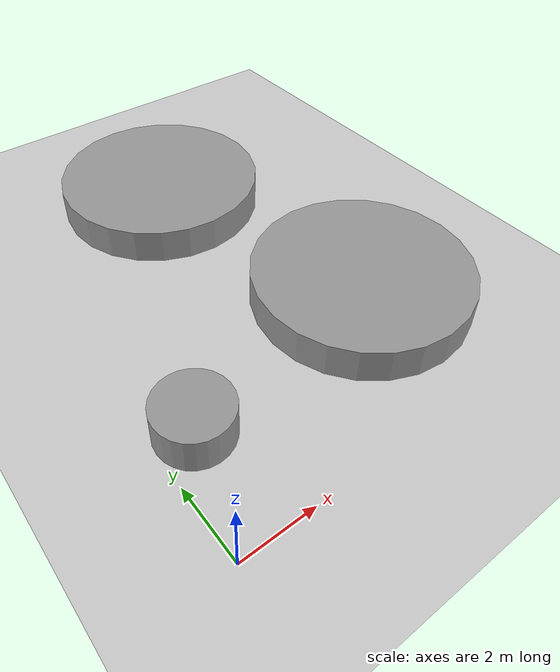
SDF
<sdf version="1.7">
 <world name="default">
  <model name="ground_plane">
   <static>1</static>
   <link name="link">
    <collision name="collision">
     <geometry><plane><normal>0 0 1</normal><size>100 100</size></plane></geometry>
     <surface>
      <contact><collide_bitmask>65535</collide_bitmask></contact>
      <friction><ode><mu>100</mu><mu2>50</mu2></ode></friction>
     </surface>
    </collision>
    <visual name="visual">
     <cast_shadows>0</cast_shadows>
     <geometry><plane><normal>0 0 1</normal><size>100 100</size></plane></geometry>
     <material>
      <script><uri>file://media/materials/scripts/gazebo.material</uri><name>Gazebo/Grey</name></script>
     </material>
    </visual>
   </link>
  </model>
  <model name="unit_cylinder">
   <link name="link">
    <inertial>
     <mass>1000</mass>
     <inertia><ixx>2333.33</ixx><ixy>0</ixy><ixz>0</ixz><iyy>2333.33</iyy><iyz>0</iyz><izz>4500</izz></inertia>
    </inertial>
    <pose>5 11 0.5 0 -0 0</pose>
    <visual name="visual">
     <geometry><cylinder><radius>3</radius><length>1</length></cylinder></geometry>
     <material>
      <script><name>Gazebo/Grey</name><uri>file://media/materials/scripts/gazebo.material</uri></script>
      <shader type="pixel"><normal_map>__default__</normal_map></shader>
      <ambient>0.467 0.463 0.482 1</ambient>
      <diffuse>0.467 0.463 0.482 1</diffuse>
      <specular>0.467 0.463 0.482 1</specular>
      <emissive>0.467 0.463 0.482 1</emissive>
     </material>
    </visual>
    <collision name="collision">
     <geometry><cylinder><radius>3</radius><length>1</length></cylinder></geometry>
     <surface>
      <friction>
       <ode><mu>1</mu><mu2>1</mu2><fdir1>0 0 0</fdir1><slip1>0</slip1><slip2>0</slip2></ode>
       <torsional>
        <coefficient>1</coefficient>
        <patch_radius>0</patch_radius>
        <surface_radius>0</surface_radius>
        <use_patch_radius>1</use_patch_radius>
        <ode><slip>0</slip></ode>
       </torsional>
      </friction>
      <bounce><restitution_coefficient>0</restitution_coefficient><threshold>1e+06</threshold></bounce>
      <contact>
       <collide_without_contact>0</collide_without_contact>
       <collide_without_contact_bitmask>1</collide_without_contact_bitmask>
       <collide_bitmask>1</collide_bitmask>
       <ode>
        <soft_cfm>0</soft_cfm>
        <soft_erp>0.2</soft_erp>
        <kp>1e+13</kp>
        <kd>1</kd>
        <max_vel>0.01</max_vel>
        <min_depth>0</min_depth>
       </ode>
       <bullet>
        <split_impulse>1</split_impulse>
        <split_impulse_penetration_threshold>-0.01</split_impulse_penetration_threshold>
        <soft_cfm>0</soft_cfm>
        <soft_erp>0.2</soft_erp>
        <kp>1e+13</kp>
        <kd>1</kd>
       </bullet>
      </contact>
     </surface>
    </collision>
    <sensor name="contact_1" type="contact">
     <contact><collision>collision</collision><topic>__default_topic__</topic></contact>
     <plugin name="collision_1" filename="libgazebo_ros_bumper.so">
      <ros><namespace>collision_1</namespace><remapping>bumper_states:=collision</remapping></ros>
     </plugin>
    </sensor>
   </link>
   <static>1</static>
   <pose>0 0 0.001202 0 -0 0</pose>
  </model>
  <model name="unit_cylinder_0">
   <link name="link">
    <inertial>
     <mass>1000</mass>
     <inertia><ixx>2333.33</ixx><ixy>0</ixy><ixz>0</ixz><iyy>2333.33</iyy><iyz>0</iyz><izz>4500</izz></inertia>
    </inertial>
    <pose>7 4 0.5 0 -0 0</pose>
    <visual name="visual">
     <geometry><cylinder><radius>3</radius><length>1</length></cylinder></geometry>
     <material>
      <script><name>Gazebo/Grey</name><uri>file://media/materials/scripts/gazebo.material</uri></script>
      <shader type="pixel"><normal_map>__default__</normal_map></shader>
      <ambient>0.467 0.463 0.482 1</ambient>
      <diffuse>0.467 0.463 0.482 1</diffuse>
      <specular>0.467 0.463 0.482 1</specular>
      <emissive>0.467 0.463 0.482 1</emissive>
     </material>
    </visual>
    <collision name="collision">
     <geometry><cylinder><radius>3</radius><length>1</length></cylinder></geometry>
     <surface>
      <friction>
       <ode><mu>1</mu><mu2>1</mu2><fdir1>0 0 0</fdir1><slip1>0</slip1><slip2>0</slip2></ode>
       <torsional>
        <coefficient>1</coefficient>
        <patch_radius>0</patch_radius>
        <surface_radius>0</surface_radius>
        <use_patch_radius>1</use_patch_radius>
        <ode><slip>0</slip></ode>
       </torsional>
      </friction>
      <bounce><restitution_coefficient>0</restitution_coefficient><threshold>1e+06</threshold></bounce>
      <contact>
       <collide_without_contact>0</collide_without_contact>
       <collide_without_contact_bitmask>1</collide_without_contact_bitmask>
       <collide_bitmask>1</collide_bitmask>
       <ode>
        <soft_cfm>0</soft_cfm>
        <soft_erp>0.2</soft_erp>
        <kp>1e+13</kp>
        <kd>1</kd>
        <max_vel>0.01</max_vel>
        <min_depth>0</min_depth>
       </ode>
       <bullet>
        <split_impulse>1</split_impulse>
        <split_impulse_penetration_threshold>-0.01</split_impulse_penetration_threshold>
        <soft_cfm>0</soft_cfm>
        <soft_erp>0.2</soft_erp>
        <kp>1e+13</kp>
        <kd>1</kd>
       </bullet>
      </contact>
     </surface>
    </collision>
    <sensor name="contact_2" type="contact">
     <contact><collision>collision</collision><topic>__default_topic__</topic></contact>
     <plugin name="collision_2" filename="libgazebo_ros_bumper.so">
      <ros><namespace>collision_2</namespace><remapping>bumper_states:=collision</remapping></ros>
     </plugin>
    </sensor>
   </link>
   <static>1</static>
   <pose>0 0 0.012472 0 -0 0</pose>
  </model>
  <model name="unit_cylinder_1_1">
   <link name="link">
    <inertial>
     <mass>1000</mass>
     <inertia><ixx>333.333</ixx><ixy>0</ixy><ixz>0</ixz><iyy>333.333</iyy><iyz>0</iyz><izz>500</izz></inertia>
    </inertial>
    <pose>1 3 0.5 0 -0 0</pose>
    <visual name="visual">
     <geometry><cylinder><radius>1</radius><length>1</length></cylinder></geometry>
     <material>
      <script><name>Gazebo/Grey</name><uri>file://media/materials/scripts/gazebo.material</uri></script>
      <shader type="pixel"><normal_map>__default__</normal_map></shader>
      <ambient>0.467 0.463 0.482 1</ambient>
      <diffuse>0.467 0.463 0.482 1</diffuse>
      <specular>0.467 0.463 0.482 1</specular>
      <emissive>0.467 0.463 0.482 1</emissive>
     </material>
    </visual>
    <collision name="collision">
     <geometry><cylinder><radius>1</radius><length>1</length></cylinder></geometry>
     <surface>
      <friction>
       <ode><mu>1</mu><mu2>1</mu2><fdir1>0 0 0</fdir1><slip1>0</slip1><slip2>0</slip2></ode>
       <torsional>
        <coefficient>1</coefficient>
        <patch_radius>0</patch_radius>
        <surface_radius>0</surface_radius>
        <use_patch_radius>1</use_patch_radius>
        <ode><slip>0</slip></ode>
       </torsional>
      </friction>
      <bounce><restitution_coefficient>0</restitution_coefficient><threshold>1e+06</threshold></bounce>
      <contact>
       <collide_without_contact>0</collide_without_contact>
       <collide_without_contact_bitmask>1</collide_without_contact_bitmask>
       <collide_bitmask>1</collide_bitmask>
       <ode>
        <soft_cfm>0</soft_cfm>
        <soft_erp>0.2</soft_erp>
        <kp>1e+13</kp>
        <kd>1</kd>
        <max_vel>0.01</max_vel>
        <min_depth>0</min_depth>
       </ode>
       <bullet>
        <split_impulse>1</split_impulse>
        <split_impulse_penetration_threshold>-0.01</split_impulse_penetration_threshold>
        <soft_cfm>0</soft_cfm>
        <soft_erp>0.2</soft_erp>
        <kp>1e+13</kp>
        <kd>1</kd>
       </bullet>
      </contact>
     </surface>
    </collision>
    <sensor name="contact_4" type="contact">
     <contact><collision>collision</collision><topic>__default_topic__</topic></contact>
     <plugin name="collision_4" filename="libgazebo_ros_bumper.so">
      <ros><namespace>collision_4</namespace><remapping>bumper_states:=collision</remapping></ros>
     </plugin>
    </sensor>
   </link>
   <static>1</static>
   <pose>0 0 0.001241 0 -0 0</pose>
  </model>
 </world>
</sdf>
